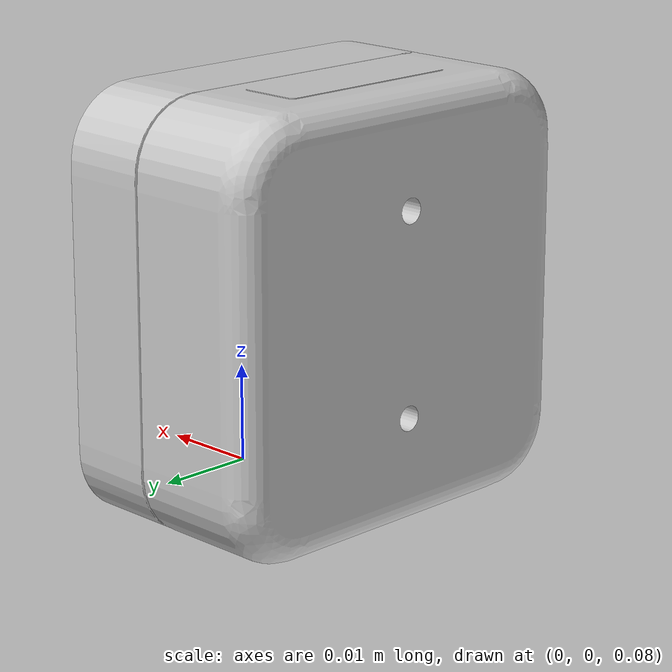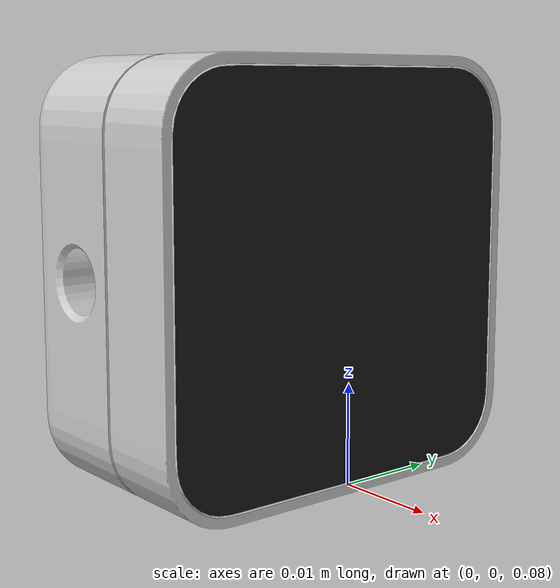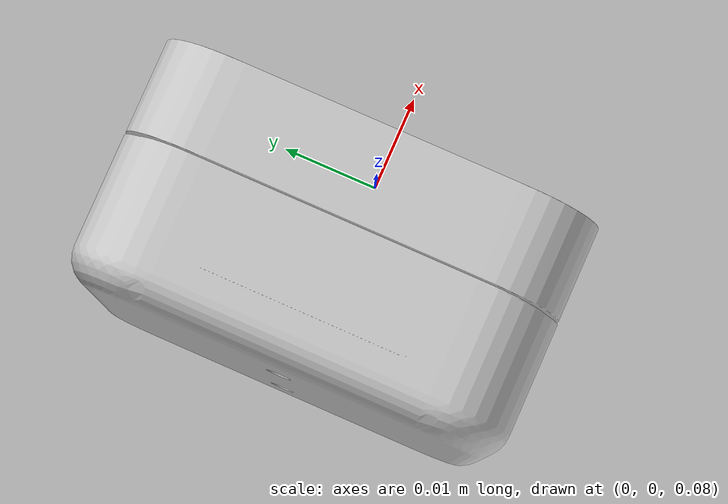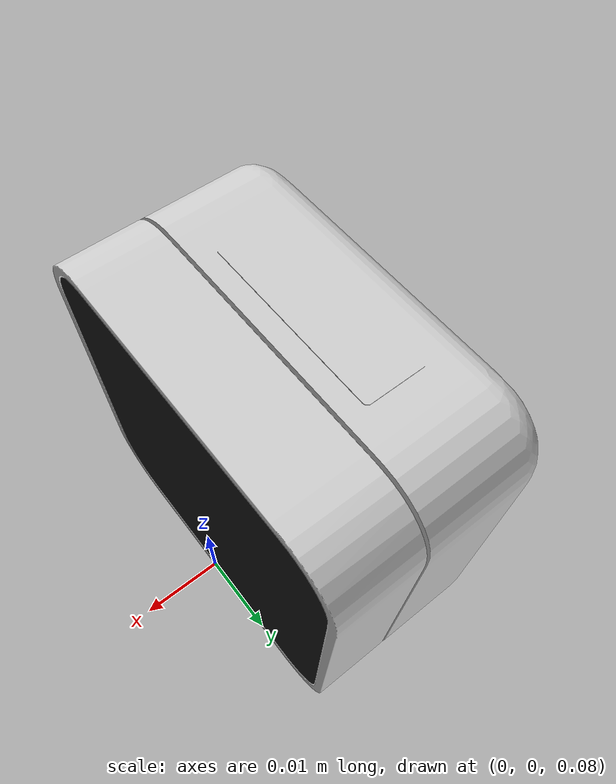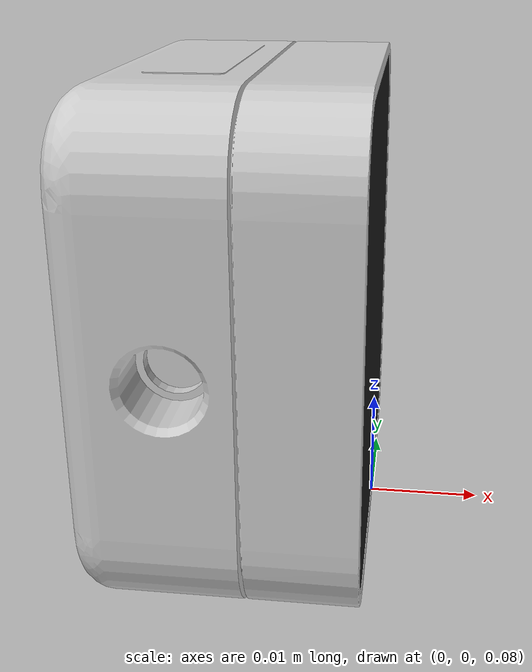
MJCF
<mujoco model="d405">
  <compiler angle="degree" meshdir="assets" autolimits="true"/>

  <option cone="elliptic" impratio="10"/>

  <asset>
    <material name="gray" rgba="0.8 0.8 0.8 1"/>
    <material name="black" rgba="0.1 0.1 0.1 1"/>

    <mesh name="d405_shell" file="d405_shell.obj" scale="0.001 0.001 0.001"/>
    <mesh name="d405_glass" file="d405_glass.obj" scale="0.001 0.001 0.001"/>
    <mesh name="d405_coll" file="d405.stl" scale="0.001 0.001 0.001"/>
  </asset>

  <default>
    <default class="d405">
      <default class="visual">
        <geom type="mesh" contype="0" conaffinity="0" group="2" material="black"/>
      </default>
      <default class="collision">
        <geom type="mesh" group="3"/>
      </default>
    </default>
  </default>

  <worldbody>
    <body name="d405" childclass="d405" pos="0 0 0.1">
      <geom mesh="d405_shell"  quat="0.5 0.5 0.5 0.5" material="gray" class="visual"/>
      <geom mesh="d405_glass"  quat="0.5 0.5 0.5 0.5" material="black" class="visual"/>
      <geom mesh="d405_coll"  quat="0.5 0.5 0.5 0.5" class="collision"/>
<!-- left -->
 <!-- >>> np.arctan(720/(2*650.40270996))*360/np.pi
np.float64(57.9293391321625) -->

 <!-- right -->
 <!-- >>> np.arctan(720/(2*651.50952148))*360/np.pi
np.float64(57.84682394938774) -->
      <camera name="camera" pos="0.0038 0 -0.009" quat="0.7071068 0 -0.7071068 0" fovy="58"/>
    </body>
  </worldbody>

</mujoco>
